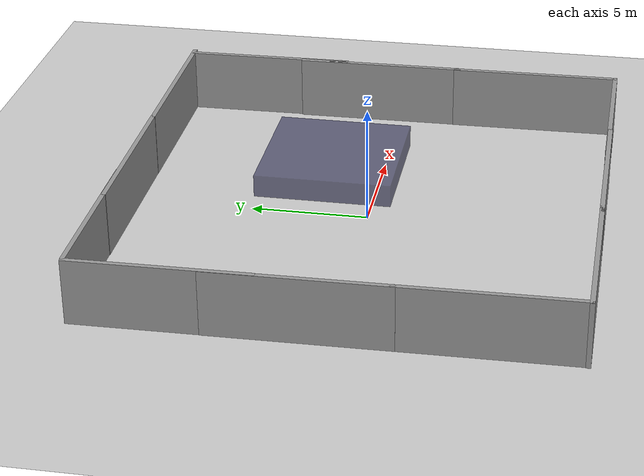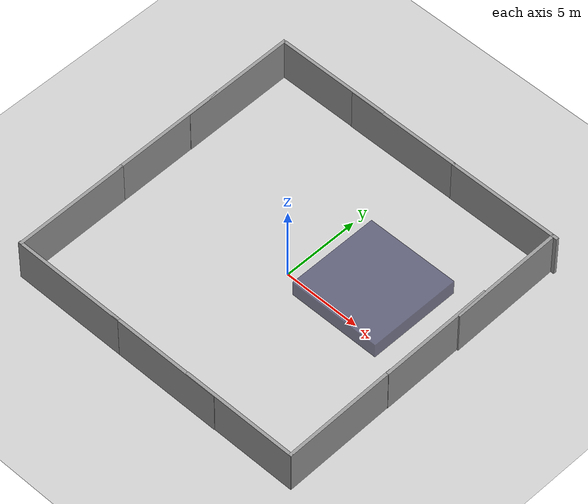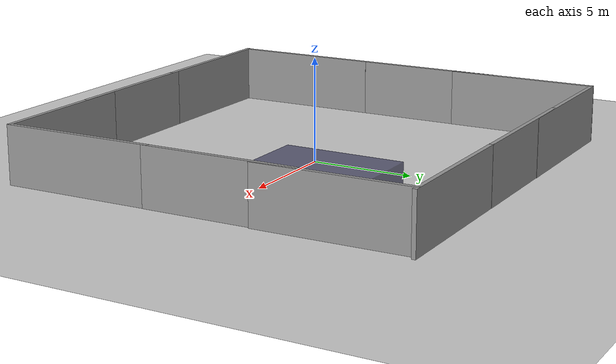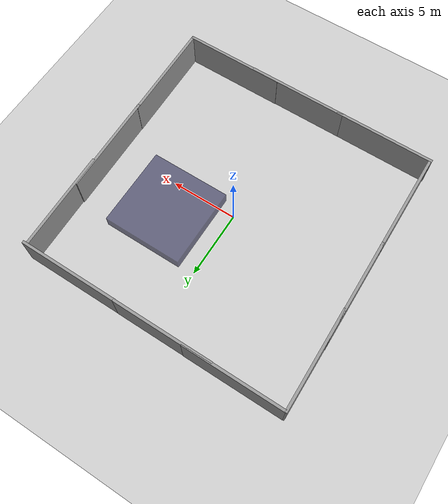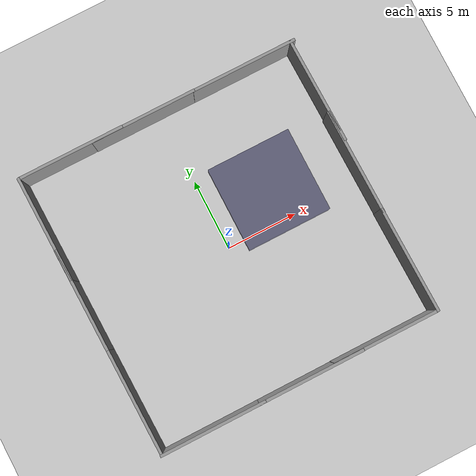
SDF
<sdf version="1.7">
 <world name="default">
  <light name="sun" type="directional">
   <pose>0 0 10 0 -0 0</pose>
   <diffuse>0.8 0.8 0.8 1</diffuse>
   <specular>0.2 0.2 0.2 1</specular>
   <attenuation>
    <range>1000</range>
    <constant>0.9</constant>
    <linear>0.01</linear>
    <quadratic>0.001</quadratic>
   </attenuation>
   <direction>-0.5 0.1 -0.9</direction>
   <spot><inner_angle>0</inner_angle><outer_angle>0</outer_angle><falloff>0</falloff></spot>
  </light>
  <model name="ground_plane">
   <static>1</static>
   <link name="link">
    <collision name="collision">
     <geometry><plane><normal>0 0 1</normal><size>100 100</size></plane></geometry>
     <surface>
      <contact><collide_bitmask>65535</collide_bitmask></contact>
      <friction><ode><mu>100</mu><mu2>50</mu2></ode></friction>
     </surface>
    </collision>
    <visual name="visual">
     <cast_shadows>0</cast_shadows>
     <geometry><plane><normal>0 0 1</normal><size>100 100</size></plane></geometry>
     <material>
      <script><uri>file://media/materials/scripts/gazebo.material</uri><name>Gazebo/Grey</name></script>
     </material>
    </visual>
   </link>
  </model>
  <gravity>0 0 -9.8</gravity>
  <magnetic_field>6e-06 2.3e-05 -4.2e-05</magnetic_field>
  <atmosphere type="adiabatic"/>
  <physics type="ode">
   <max_step_size>0.001</max_step_size>
   <real_time_factor>1</real_time_factor>
   <real_time_update_rate>1000</real_time_update_rate>
  </physics>
  <scene><ambient>0.4 0.4 0.4 1</ambient><background>0.7 0.7 0.7 1</background><shadows>1</shadows></scene>
  <spherical_coordinates>
   <surface_model>EARTH_WGS84</surface_model>
   <latitude_deg>0</latitude_deg>
   <longitude_deg>0</longitude_deg>
   <elevation>0</elevation>
   <heading_deg>0</heading_deg>
  </spherical_coordinates>
  <model name="grey_wall">
   <static>1</static>
   <link name="link">
    <pose>0 0 1.4 0 -0 0</pose>
    <collision name="collision"><geometry><box><size>7.5 0.2 2.8</size></box></geometry></collision>
    <visual name="visual">
     <cast_shadows>0</cast_shadows>
     <geometry><box><size>7.5 0.2 2.8</size></box></geometry>
     <material>
      <script>
       <uri>model://grey_wall/materials/scripts</uri>
       <uri>model://grey_wall/materials/textures</uri>
       <name>vrc/grey_wall</name>
      </script>
     </material>
    </visual>
   </link>
   <pose>-6.22682 -9.88975 0 0 -0 0</pose>
  </model>
  <model name="grey_wall_clone">
   <static>1</static>
   <link name="link">
    <pose>0 0 1.4 0 -0 0</pose>
    <collision name="collision"><geometry><box><size>7.5 0.2 2.8</size></box></geometry></collision>
    <visual name="visual">
     <cast_shadows>0</cast_shadows>
     <geometry><box><size>7.5 0.2 2.8</size></box></geometry>
     <material>
      <script>
       <uri>model://grey_wall/materials/scripts</uri>
       <uri>model://grey_wall/materials/textures</uri>
       <name>vrc/grey_wall</name>
      </script>
     </material>
    </visual>
   </link>
   <pose>0.801088 -9.88786 0 0 -0 0</pose>
  </model>
  <model name="grey_wall_clone_0">
   <static>1</static>
   <link name="link">
    <pose>0 0 1.4 0 -0 0</pose>
    <collision name="collision"><geometry><box><size>7.5 0.2 2.8</size></box></geometry></collision>
    <visual name="visual">
     <cast_shadows>0</cast_shadows>
     <geometry><box><size>7.5 0.2 2.8</size></box></geometry>
     <material>
      <script>
       <uri>model://grey_wall/materials/scripts</uri>
       <uri>model://grey_wall/materials/textures</uri>
       <name>vrc/grey_wall</name>
      </script>
     </material>
    </visual>
   </link>
   <pose>6.2185 -9.8636 0 0 -0 0</pose>
  </model>
  <model name="grey_wall_clone_1">
   <static>1</static>
   <link name="link">
    <pose>0 0 1.4 0 -0 0</pose>
    <collision name="collision"><geometry><box><size>7.5 0.2 2.8</size></box></geometry></collision>
    <visual name="visual">
     <cast_shadows>0</cast_shadows>
     <geometry><box><size>7.5 0.2 2.8</size></box></geometry>
     <material>
      <script>
       <uri>model://grey_wall/materials/scripts</uri>
       <uri>model://grey_wall/materials/textures</uri>
       <name>vrc/grey_wall</name>
      </script>
     </material>
    </visual>
   </link>
   <pose>6.26901 9.96753 0 0 -0 0</pose>
  </model>
  <model name="grey_wall_clone_2">
   <static>1</static>
   <link name="link">
    <pose>0 0 1.4 0 -0 0</pose>
    <collision name="collision"><geometry><box><size>7.5 0.2 2.8</size></box></geometry></collision>
    <visual name="visual">
     <cast_shadows>0</cast_shadows>
     <geometry><box><size>7.5 0.2 2.8</size></box></geometry>
     <material>
      <script>
       <uri>model://grey_wall/materials/scripts</uri>
       <uri>model://grey_wall/materials/textures</uri>
       <name>vrc/grey_wall</name>
      </script>
     </material>
    </visual>
   </link>
   <pose>-1.0863 9.97773 0 0 -0 0</pose>
  </model>
  <model name="grey_wall_clone_3">
   <static>1</static>
   <link name="link">
    <pose>0 0 1.4 0 -0 0</pose>
    <collision name="collision"><geometry><box><size>7.5 0.2 2.8</size></box></geometry></collision>
    <visual name="visual">
     <cast_shadows>0</cast_shadows>
     <geometry><box><size>7.5 0.2 2.8</size></box></geometry>
     <material>
      <script>
       <uri>model://grey_wall/materials/scripts</uri>
       <uri>model://grey_wall/materials/textures</uri>
       <name>vrc/grey_wall</name>
      </script>
     </material>
    </visual>
   </link>
   <pose>-6.32845 9.9967 0 0 -0 0</pose>
  </model>
  <model name="grey_wall_clone_4">
   <static>1</static>
   <link name="link">
    <pose>0 0 1.4 0 -0 0</pose>
    <collision name="collision"><geometry><box><size>7.5 0.2 2.8</size></box></geometry></collision>
    <visual name="visual">
     <cast_shadows>0</cast_shadows>
     <geometry><box><size>7.5 0.2 2.8</size></box></geometry>
     <material>
      <script>
       <uri>model://grey_wall/materials/scripts</uri>
       <uri>model://grey_wall/materials/textures</uri>
       <name>vrc/grey_wall</name>
      </script>
     </material>
    </visual>
   </link>
   <pose>9.84397 -6.19465 0 0 -0 1.58664</pose>
  </model>
  <model name="grey_wall_clone_4_clone">
   <static>1</static>
   <link name="link">
    <pose>0 0 1.4 0 -0 0</pose>
    <collision name="collision"><geometry><box><size>7.5 0.2 2.8</size></box></geometry></collision>
    <visual name="visual">
     <cast_shadows>0</cast_shadows>
     <geometry><box><size>7.5 0.2 2.8</size></box></geometry>
     <material>
      <script>
       <uri>model://grey_wall/materials/scripts</uri>
       <uri>model://grey_wall/materials/textures</uri>
       <name>vrc/grey_wall</name>
      </script>
     </material>
    </visual>
   </link>
   <pose>9.76 0.985085 0 0 -0 1.58397</pose>
  </model>
  <model name="grey_wall_clone_4_clone_clone">
   <static>1</static>
   <link name="link">
    <pose>0 0 1.4 0 -0 0</pose>
    <collision name="collision"><geometry><box><size>7.5 0.2 2.8</size></box></geometry></collision>
    <visual name="visual">
     <cast_shadows>0</cast_shadows>
     <geometry><box><size>7.5 0.2 2.8</size></box></geometry>
     <material>
      <script>
       <uri>model://grey_wall/materials/scripts</uri>
       <uri>model://grey_wall/materials/textures</uri>
       <name>vrc/grey_wall</name>
      </script>
     </material>
    </visual>
   </link>
   <pose>9.76164 6.28665 0 0 -0 1.58781</pose>
  </model>
  <model name="grey_wall_clone_4_clone_clone_0">
   <static>1</static>
   <link name="link">
    <pose>0 0 1.4 0 -0 0</pose>
    <collision name="collision"><geometry><box><size>7.5 0.2 2.8</size></box></geometry></collision>
    <visual name="visual">
     <cast_shadows>0</cast_shadows>
     <geometry><box><size>7.5 0.2 2.8</size></box></geometry>
     <material>
      <script>
       <uri>model://grey_wall/materials/scripts</uri>
       <uri>model://grey_wall/materials/textures</uri>
       <name>vrc/grey_wall</name>
      </script>
     </material>
    </visual>
   </link>
   <pose>-9.89094 -6.21656 0 0 -0 1.58397</pose>
  </model>
  <model name="grey_wall_clone_4_clone_clone_1">
   <static>1</static>
   <link name="link">
    <pose>0 0 1.4 0 -0 0</pose>
    <collision name="collision"><geometry><box><size>7.5 0.2 2.8</size></box></geometry></collision>
    <visual name="visual">
     <cast_shadows>0</cast_shadows>
     <geometry><box><size>7.5 0.2 2.8</size></box></geometry>
     <material>
      <script>
       <uri>model://grey_wall/materials/scripts</uri>
       <uri>model://grey_wall/materials/textures</uri>
       <name>vrc/grey_wall</name>
      </script>
     </material>
    </visual>
   </link>
   <pose>-9.98945 1.04843 0 0 -0 1.58397</pose>
  </model>
  <model name="grey_wall_clone_4_clone_clone_2">
   <static>1</static>
   <link name="link">
    <pose>0 0 1.4 0 -0 0</pose>
    <collision name="collision"><geometry><box><size>7.5 0.2 2.8</size></box></geometry></collision>
    <visual name="visual">
     <cast_shadows>0</cast_shadows>
     <geometry><box><size>7.5 0.2 2.8</size></box></geometry>
     <material>
      <script>
       <uri>model://grey_wall/materials/scripts</uri>
       <uri>model://grey_wall/materials/textures</uri>
       <name>vrc/grey_wall</name>
      </script>
     </material>
    </visual>
   </link>
   <pose>-10.0425 6.32716 0 0 -0 1.58397</pose>
  </model>
  <light name="user_directional_light_0" type="directional">
   <pose>7.99642 -20.8781 1 0 -0 0</pose>
   <diffuse>0.5 0.5 0.5 1</diffuse>
   <specular>0.1 0.1 0.1 1</specular>
   <direction>0.1 0.1 -0.9</direction>
   <attenuation>
    <range>20</range>
    <constant>0.5</constant>
    <linear>0.01</linear>
    <quadratic>0.001</quadratic>
   </attenuation>
   <spot><inner_angle>0</inner_angle><outer_angle>0</outer_angle><falloff>0</falloff></spot>
  </light>
  <light name="user_directional_light_1" type="directional">
   <pose>-21.6895 -9.91198 1 0 -0 0</pose>
   <diffuse>0.5 0.5 0.5 1</diffuse>
   <specular>0.1 0.1 0.1 1</specular>
   <direction>0.1 0.1 -0.9</direction>
   <attenuation>
    <range>20</range>
    <constant>0.5</constant>
    <linear>0.01</linear>
    <quadratic>0.001</quadratic>
   </attenuation>
   <spot><inner_angle>0</inner_angle><outer_angle>0</outer_angle><falloff>0</falloff></spot>
  </light>
  <light name="user_directional_light_2" type="directional">
   <pose>7.42215 -12.8363 1 0 -0 0</pose>
   <diffuse>0.5 0.5 0.5 1</diffuse>
   <specular>0.1 0.1 0.1 1</specular>
   <direction>0.1 0.1 -0.9</direction>
   <attenuation>
    <range>20</range>
    <constant>0.5</constant>
    <linear>0.01</linear>
    <quadratic>0.001</quadratic>
   </attenuation>
   <spot><inner_angle>0</inner_angle><outer_angle>0</outer_angle><falloff>0</falloff></spot>
  </light>
  <model name="unit_box_custom">
   <link name="link">
    <inertial>
     <mass>1</mass>
     <inertia><ixx>2.16667</ixx><ixy>0</ixy><ixz>0</ixz><iyy>3.08333</iyy><iyz>0</iyz><izz>5.08333</izz></inertia>
    </inertial>
    <kinematic>1</kinematic>
    <visual name="visual">
     <geometry><box><size>6 6 1</size></box></geometry>
     <material>
      <script><name>Gazebo/Grey</name><uri>file://media/materials/scripts/gazebo.material</uri></script>
      <shader type="pixel"><normal_map>__default__</normal_map></shader>
      <ambient>0.2 0.2 0.35 1</ambient>
      <diffuse>0.7 0.7 0.7 1</diffuse>
      <specular>0.01 0.01 0.01 1</specular>
      <emissive>0 0 0 1</emissive>
     </material>
     <transparency>0.33</transparency>
    </visual>
    <collision name="collision">
     <geometry><box><size>6 5 1</size></box></geometry>
     <surface>
      <friction>
       <ode><mu>1</mu><mu2>1</mu2><fdir1>0 0 0</fdir1><slip1>0</slip1><slip2>0</slip2></ode>
       <torsional>
        <coefficient>1</coefficient>
        <patch_radius>0</patch_radius>
        <surface_radius>0</surface_radius>
        <use_patch_radius>1</use_patch_radius>
        <ode><slip>0</slip></ode>
       </torsional>
      </friction>
      <bounce><restitution_coefficient>0</restitution_coefficient><threshold>1e+06</threshold></bounce>
      <contact>
       <collide_without_contact>0</collide_without_contact>
       <collide_without_contact_bitmask>1</collide_without_contact_bitmask>
       <collide_bitmask>1</collide_bitmask>
       <ode>
        <soft_cfm>0</soft_cfm>
        <soft_erp>0.2</soft_erp>
        <kp>1e+13</kp>
        <kd>1</kd>
        <max_vel>0.01</max_vel>
        <min_depth>0</min_depth>
       </ode>
       <bullet>
        <split_impulse>1</split_impulse>
        <split_impulse_penetration_threshold>-0.01</split_impulse_penetration_threshold>
        <soft_cfm>0</soft_cfm>
        <soft_erp>0.2</soft_erp>
        <kp>1e+13</kp>
        <kd>1</kd>
       </bullet>
      </contact>
     </surface>
    </collision>
   </link>
   <static>0</static>
   <pose>4.13838 2.19633 0.5 0 -0 0</pose>
  </model>
 </world>
</sdf>
